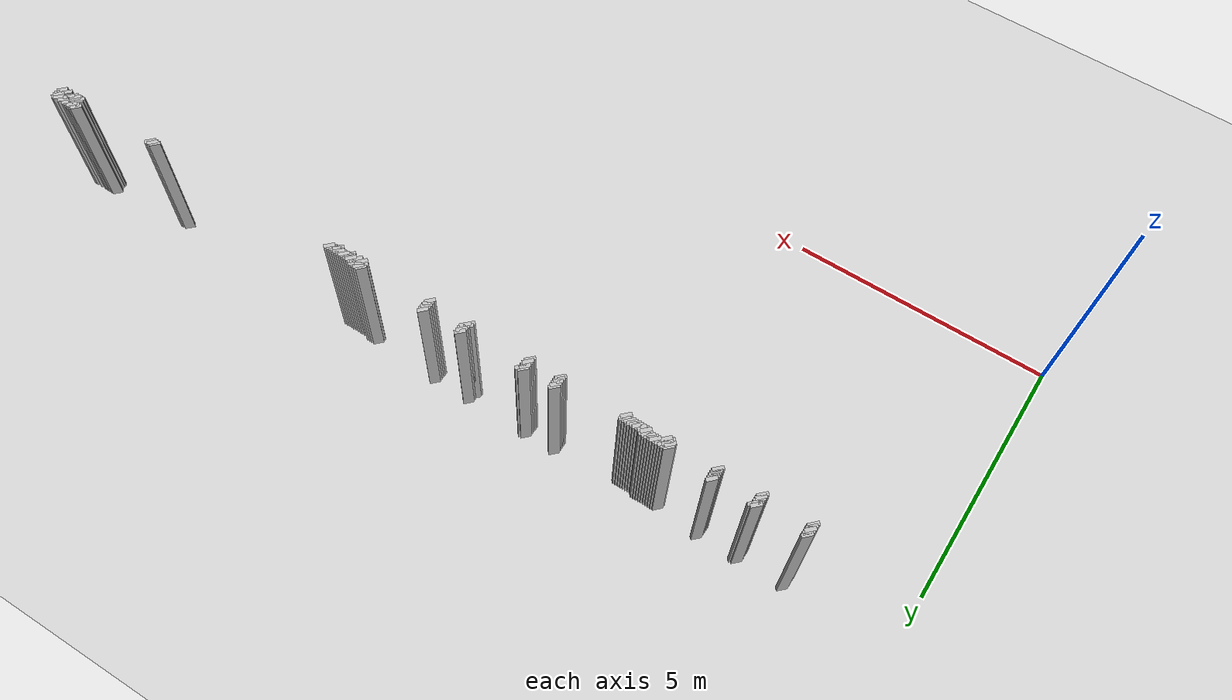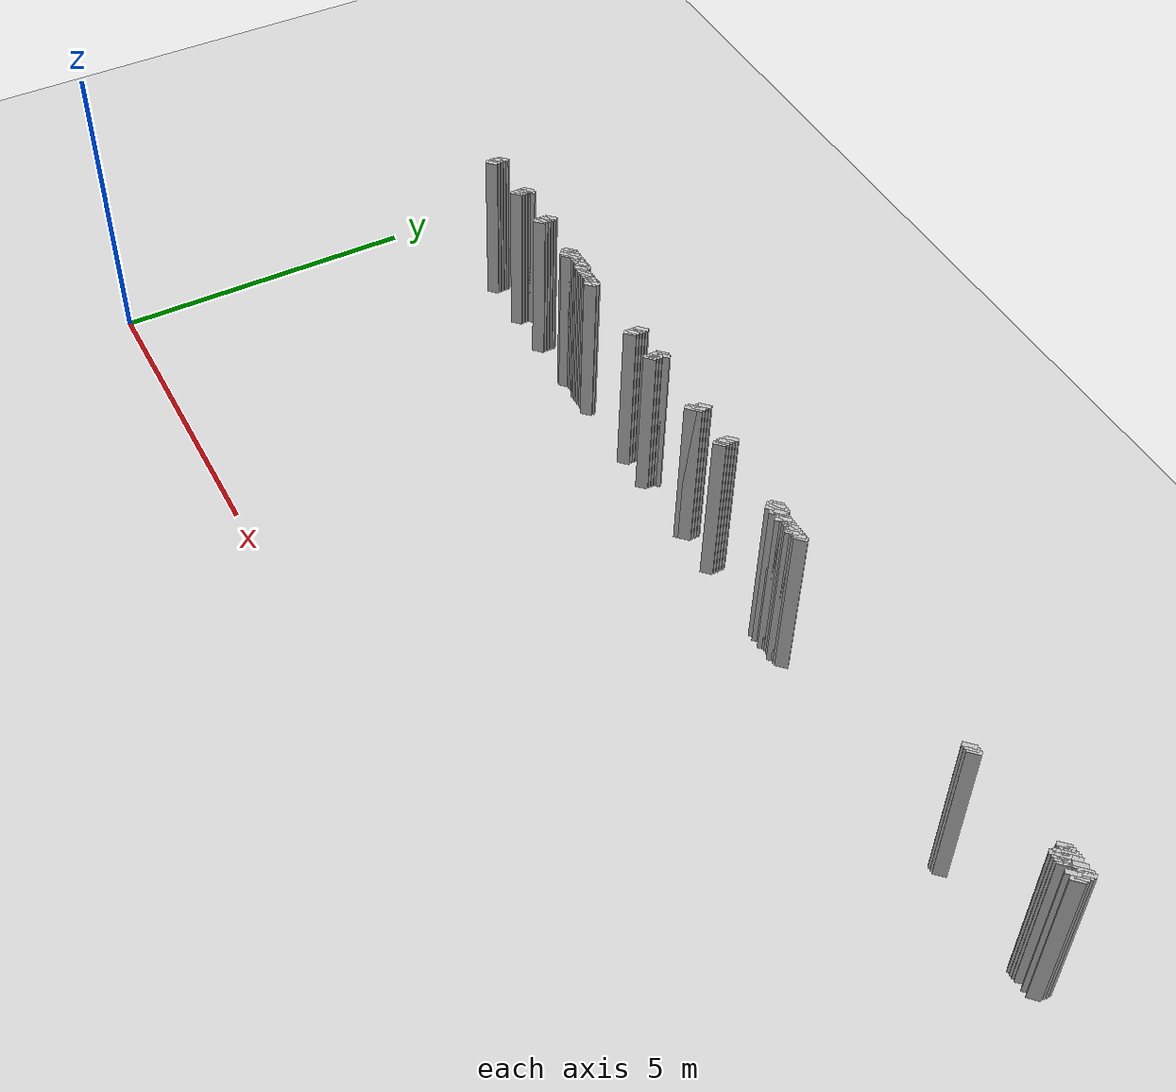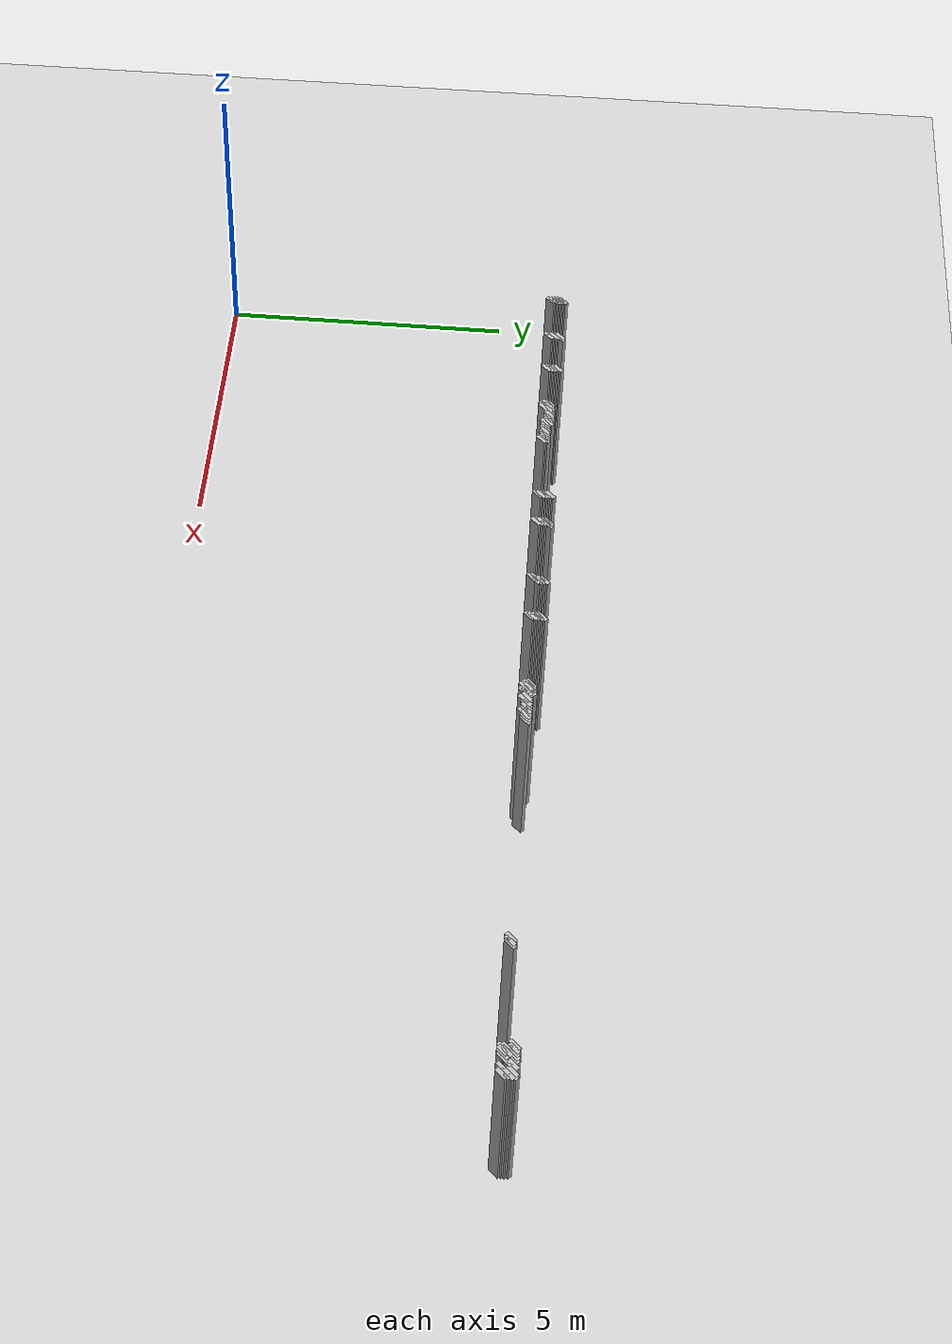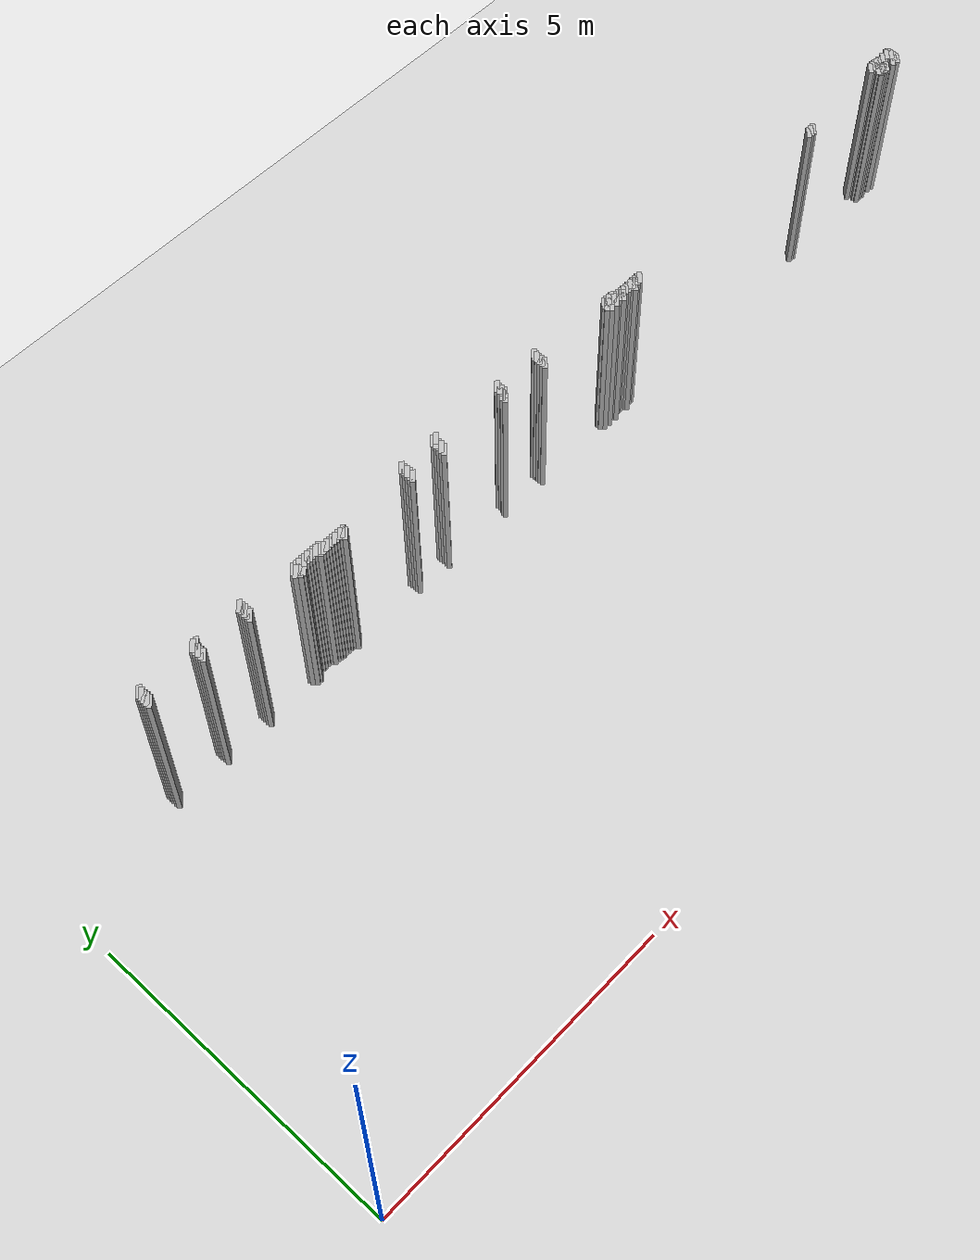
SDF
<sdf version="1.5">
 <world name="default">
  <include><uri>model://ground_plane</uri></include>
  <include><uri>model://sun</uri></include>
  <model name="grey_wall_2545">
   <static>1</static>
   <link name="link">
    <pose>2.1 6.15  1.4 0 0 -0.7853981633974572</pose>
    <collision name="collision">
     <geometry><box><size>0.07071067811865513 .2  2.8</size></box></geometry>
    </collision>
    <visual name="visual">
     <cast_shadows>0</cast_shadows>
     <geometry><box><size>0.07071067811865513 .2  2.8</size></box></geometry>
    </visual>
   </link>
  </model>
  <model name="grey_wall_2546">
   <static>1</static>
   <link name="link">
    <pose>3.0 6.15  1.4 0 0 -0.7853981633974572</pose>
    <collision name="collision">
     <geometry><box><size>0.07071067811865513 .2  2.8</size></box></geometry>
    </collision>
    <visual name="visual">
     <cast_shadows>0</cast_shadows>
     <geometry><box><size>0.07071067811865513 .2  2.8</size></box></geometry>
    </visual>
   </link>
  </model>
  <model name="grey_wall_2547">
   <static>1</static>
   <link name="link">
    <pose>3.0500000000000003 6.15  1.4 0 0 -0.7853981633974572</pose>
    <collision name="collision">
     <geometry><box><size>0.07071067811865513 .2  2.8</size></box></geometry>
    </collision>
    <visual name="visual">
     <cast_shadows>0</cast_shadows>
     <geometry><box><size>0.07071067811865513 .2  2.8</size></box></geometry>
    </visual>
   </link>
  </model>
  <model name="grey_wall_2548">
   <static>1</static>
   <link name="link">
    <pose>3.8000000000000003 6.15  1.4 0 0 -0.7853981633974572</pose>
    <collision name="collision">
     <geometry><box><size>0.07071067811865513 .2  2.8</size></box></geometry>
    </collision>
    <visual name="visual">
     <cast_shadows>0</cast_shadows>
     <geometry><box><size>0.07071067811865513 .2  2.8</size></box></geometry>
    </visual>
   </link>
  </model>
  <model name="grey_wall_2549">
   <static>1</static>
   <link name="link">
    <pose>6.75 6.15  1.4 0 0 -0.7853981633974483</pose>
    <collision name="collision">
     <geometry><box><size>0.07071067811865576 .2  2.8</size></box></geometry>
    </collision>
    <visual name="visual">
     <cast_shadows>0</cast_shadows>
     <geometry><box><size>0.07071067811865576 .2  2.8</size></box></geometry>
    </visual>
   </link>
  </model>
  <model name="grey_wall_2550">
   <static>1</static>
   <link name="link">
    <pose>7.3500000000000005 6.15  1.4 0 0 -0.7853981633974483</pose>
    <collision name="collision">
     <geometry><box><size>0.07071067811865576 .2  2.8</size></box></geometry>
    </collision>
    <visual name="visual">
     <cast_shadows>0</cast_shadows>
     <geometry><box><size>0.07071067811865576 .2  2.8</size></box></geometry>
    </visual>
   </link>
  </model>
  <model name="grey_wall_2551">
   <static>1</static>
   <link name="link">
    <pose>7.4 6.15  1.4 0 0 -0.7853981633974483</pose>
    <collision name="collision">
     <geometry><box><size>0.07071067811865576 .2  2.8</size></box></geometry>
    </collision>
    <visual name="visual">
     <cast_shadows>0</cast_shadows>
     <geometry><box><size>0.07071067811865576 .2  2.8</size></box></geometry>
    </visual>
   </link>
  </model>
  <model name="grey_wall_2552">
   <static>1</static>
   <link name="link">
    <pose>8.6 6.15  1.4 0 0 -0.7853981633974483</pose>
    <collision name="collision">
     <geometry><box><size>0.07071067811865576 .2  2.8</size></box></geometry>
    </collision>
    <visual name="visual">
     <cast_shadows>0</cast_shadows>
     <geometry><box><size>0.07071067811865576 .2  2.8</size></box></geometry>
    </visual>
   </link>
  </model>
  <model name="grey_wall_2553">
   <static>1</static>
   <link name="link">
    <pose>9.35 6.15  1.4 0 0 -0.7853981633974483</pose>
    <collision name="collision">
     <geometry><box><size>0.07071067811865576 .2  2.8</size></box></geometry>
    </collision>
    <visual name="visual">
     <cast_shadows>0</cast_shadows>
     <geometry><box><size>0.07071067811865576 .2  2.8</size></box></geometry>
    </visual>
   </link>
  </model>
  <model name="grey_wall_2554">
   <static>1</static>
   <link name="link">
    <pose>16.95 6.15  1.4 0 0 -0.7853981633974838</pose>
    <collision name="collision">
     <geometry><box><size>0.07071067811865325 .2  2.8</size></box></geometry>
    </collision>
    <visual name="visual">
     <cast_shadows>0</cast_shadows>
     <geometry><box><size>0.07071067811865325 .2  2.8</size></box></geometry>
    </visual>
   </link>
  </model>
  <model name="grey_wall_2555">
   <static>1</static>
   <link name="link">
    <pose>17.0 6.15  1.4 0 0 -0.7853981633974838</pose>
    <collision name="collision">
     <geometry><box><size>0.07071067811865325 .2  2.8</size></box></geometry>
    </collision>
    <visual name="visual">
     <cast_shadows>0</cast_shadows>
     <geometry><box><size>0.07071067811865325 .2  2.8</size></box></geometry>
    </visual>
   </link>
  </model>
  <model name="grey_wall_2556">
   <static>1</static>
   <link name="link">
    <pose>17.05 6.15  1.4 0 0 -0.7853981633974838</pose>
    <collision name="collision">
     <geometry><box><size>0.07071067811865325 .2  2.8</size></box></geometry>
    </collision>
    <visual name="visual">
     <cast_shadows>0</cast_shadows>
     <geometry><box><size>0.07071067811865325 .2  2.8</size></box></geometry>
    </visual>
   </link>
  </model>
  <model name="grey_wall_2557">
   <static>1</static>
   <link name="link">
    <pose>17.1 6.15  1.4 0 0 -0.7853981633974838</pose>
    <collision name="collision">
     <geometry><box><size>0.07071067811865325 .2  2.8</size></box></geometry>
    </collision>
    <visual name="visual">
     <cast_shadows>0</cast_shadows>
     <geometry><box><size>0.07071067811865325 .2  2.8</size></box></geometry>
    </visual>
   </link>
  </model>
  <model name="grey_wall_2558">
   <static>1</static>
   <link name="link">
    <pose>17.150000000000002 6.15  1.4 0 0 -0.7853981633974838</pose>
    <collision name="collision">
     <geometry><box><size>0.07071067811865325 .2  2.8</size></box></geometry>
    </collision>
    <visual name="visual">
     <cast_shadows>0</cast_shadows>
     <geometry><box><size>0.07071067811865325 .2  2.8</size></box></geometry>
    </visual>
   </link>
  </model>
  <model name="grey_wall_2559">
   <static>1</static>
   <link name="link">
    <pose>17.25 6.15  1.4 0 0 -0.7853981633974838</pose>
    <collision name="collision">
     <geometry><box><size>0.07071067811865325 .2  2.8</size></box></geometry>
    </collision>
    <visual name="visual">
     <cast_shadows>0</cast_shadows>
     <geometry><box><size>0.07071067811865325 .2  2.8</size></box></geometry>
    </visual>
   </link>
  </model>
  <model name="grey_wall_2560">
   <static>1</static>
   <link name="link">
    <pose>17.35 6.15  1.4 0 0 -0.7853981633974838</pose>
    <collision name="collision">
     <geometry><box><size>0.07071067811865325 .2  2.8</size></box></geometry>
    </collision>
    <visual name="visual">
     <cast_shadows>0</cast_shadows>
     <geometry><box><size>0.07071067811865325 .2  2.8</size></box></geometry>
    </visual>
   </link>
  </model>
  <model name="grey_wall_2561">
   <static>1</static>
   <link name="link">
    <pose>17.400000000000002 6.15  1.4 0 0 -0.7853981633974838</pose>
    <collision name="collision">
     <geometry><box><size>0.07071067811865325 .2  2.8</size></box></geometry>
    </collision>
    <visual name="visual">
     <cast_shadows>0</cast_shadows>
     <geometry><box><size>0.07071067811865325 .2  2.8</size></box></geometry>
    </visual>
   </link>
  </model>
  <model name="grey_wall_2562">
   <static>1</static>
   <link name="link">
    <pose>2.1 6.1000000000000005  1.4 0 0 -0.7853981633974572</pose>
    <collision name="collision">
     <geometry><box><size>0.07071067811865513 .2  2.8</size></box></geometry>
    </collision>
    <visual name="visual">
     <cast_shadows>0</cast_shadows>
     <geometry><box><size>0.07071067811865513 .2  2.8</size></box></geometry>
    </visual>
   </link>
  </model>
  <model name="grey_wall_2563">
   <static>1</static>
   <link name="link">
    <pose>3.0 6.1000000000000005  1.4 0 0 -0.7853981633974572</pose>
    <collision name="collision">
     <geometry><box><size>0.07071067811865513 .2  2.8</size></box></geometry>
    </collision>
    <visual name="visual">
     <cast_shadows>0</cast_shadows>
     <geometry><box><size>0.07071067811865513 .2  2.8</size></box></geometry>
    </visual>
   </link>
  </model>
  <model name="grey_wall_2564">
   <static>1</static>
   <link name="link">
    <pose>3.8000000000000003 6.1000000000000005  1.4 0 0 -0.7853981633974572</pose>
    <collision name="collision">
     <geometry><box><size>0.07071067811865513 .2  2.8</size></box></geometry>
    </collision>
    <visual name="visual">
     <cast_shadows>0</cast_shadows>
     <geometry><box><size>0.07071067811865513 .2  2.8</size></box></geometry>
    </visual>
   </link>
  </model>
  <model name="grey_wall_2565">
   <static>1</static>
   <link name="link">
    <pose>6.75 6.1000000000000005  1.4 0 0 -0.7853981633974483</pose>
    <collision name="collision">
     <geometry><box><size>0.07071067811865576 .2  2.8</size></box></geometry>
    </collision>
    <visual name="visual">
     <cast_shadows>0</cast_shadows>
     <geometry><box><size>0.07071067811865576 .2  2.8</size></box></geometry>
    </visual>
   </link>
  </model>
  <model name="grey_wall_2566">
   <static>1</static>
   <link name="link">
    <pose>7.3500000000000005 6.1000000000000005  1.4 0 0 -0.7853981633974483</pose>
    <collision name="collision">
     <geometry><box><size>0.07071067811865576 .2  2.8</size></box></geometry>
    </collision>
    <visual name="visual">
     <cast_shadows>0</cast_shadows>
     <geometry><box><size>0.07071067811865576 .2  2.8</size></box></geometry>
    </visual>
   </link>
  </model>
  <model name="grey_wall_2567">
   <static>1</static>
   <link name="link">
    <pose>8.6 6.1000000000000005  1.4 0 0 -0.7853981633974483</pose>
    <collision name="collision">
     <geometry><box><size>0.07071067811865576 .2  2.8</size></box></geometry>
    </collision>
    <visual name="visual">
     <cast_shadows>0</cast_shadows>
     <geometry><box><size>0.07071067811865576 .2  2.8</size></box></geometry>
    </visual>
   </link>
  </model>
  <model name="grey_wall_2568">
   <static>1</static>
   <link name="link">
    <pose>9.35 6.1000000000000005  1.4 0 0 -0.7853981633974483</pose>
    <collision name="collision">
     <geometry><box><size>0.07071067811865576 .2  2.8</size></box></geometry>
    </collision>
    <visual name="visual">
     <cast_shadows>0</cast_shadows>
     <geometry><box><size>0.07071067811865576 .2  2.8</size></box></geometry>
    </visual>
   </link>
  </model>
  <model name="grey_wall_2569">
   <static>1</static>
   <link name="link">
    <pose>17.400000000000002 6.1000000000000005  1.4 0 0 -0.7853981633974838</pose>
    <collision name="collision">
     <geometry><box><size>0.07071067811865325 .2  2.8</size></box></geometry>
    </collision>
    <visual name="visual">
     <cast_shadows>0</cast_shadows>
     <geometry><box><size>0.07071067811865325 .2  2.8</size></box></geometry>
    </visual>
   </link>
  </model>
  <model name="grey_wall_2570">
   <static>1</static>
   <link name="link">
    <pose>2.1 6.050000000000001  1.4 0 0 -0.7853981633974572</pose>
    <collision name="collision">
     <geometry><box><size>0.07071067811865513 .2  2.8</size></box></geometry>
    </collision>
    <visual name="visual">
     <cast_shadows>0</cast_shadows>
     <geometry><box><size>0.07071067811865513 .2  2.8</size></box></geometry>
    </visual>
   </link>
  </model>
  <model name="grey_wall_2571">
   <static>1</static>
   <link name="link">
    <pose>3.0 6.050000000000001  1.4 0 0 -0.7853981633974572</pose>
    <collision name="collision">
     <geometry><box><size>0.07071067811865513 .2  2.8</size></box></geometry>
    </collision>
    <visual name="visual">
     <cast_shadows>0</cast_shadows>
     <geometry><box><size>0.07071067811865513 .2  2.8</size></box></geometry>
    </visual>
   </link>
  </model>
  <model name="grey_wall_2572">
   <static>1</static>
   <link name="link">
    <pose>3.8000000000000003 6.050000000000001  1.4 0 0 -0.7853981633974572</pose>
    <collision name="collision">
     <geometry><box><size>0.07071067811865513 .2  2.8</size></box></geometry>
    </collision>
    <visual name="visual">
     <cast_shadows>0</cast_shadows>
     <geometry><box><size>0.07071067811865513 .2  2.8</size></box></geometry>
    </visual>
   </link>
  </model>
  <model name="grey_wall_2573">
   <static>1</static>
   <link name="link">
    <pose>4.65 6.050000000000001  1.4 0 0 -0.7853981633974483</pose>
    <collision name="collision">
     <geometry><box><size>0.07071067811865576 .2  2.8</size></box></geometry>
    </collision>
    <visual name="visual">
     <cast_shadows>0</cast_shadows>
     <geometry><box><size>0.07071067811865576 .2  2.8</size></box></geometry>
    </visual>
   </link>
  </model>
  <model name="grey_wall_2574">
   <static>1</static>
   <link name="link">
    <pose>4.7 6.050000000000001  1.4 0 0 -0.7853981633974483</pose>
    <collision name="collision">
     <geometry><box><size>0.07071067811865576 .2  2.8</size></box></geometry>
    </collision>
    <visual name="visual">
     <cast_shadows>0</cast_shadows>
     <geometry><box><size>0.07071067811865576 .2  2.8</size></box></geometry>
    </visual>
   </link>
  </model>
  <model name="grey_wall_2575">
   <static>1</static>
   <link name="link">
    <pose>4.75 6.050000000000001  1.4 0 0 -0.7853981633974483</pose>
    <collision name="collision">
     <geometry><box><size>0.07071067811865576 .2  2.8</size></box></geometry>
    </collision>
    <visual name="visual">
     <cast_shadows>0</cast_shadows>
     <geometry><box><size>0.07071067811865576 .2  2.8</size></box></geometry>
    </visual>
   </link>
  </model>
  <model name="grey_wall_2576">
   <static>1</static>
   <link name="link">
    <pose>4.800000000000001 6.050000000000001  1.4 0 0 -0.7853981633974483</pose>
    <collision name="collision">
     <geometry><box><size>0.07071067811865576 .2  2.8</size></box></geometry>
    </collision>
    <visual name="visual">
     <cast_shadows>0</cast_shadows>
     <geometry><box><size>0.07071067811865576 .2  2.8</size></box></geometry>
    </visual>
   </link>
  </model>
  <model name="grey_wall_2577">
   <static>1</static>
   <link name="link">
    <pose>4.8500000000000005 6.050000000000001  1.4 0 0 -0.7853981633974483</pose>
    <collision name="collision">
     <geometry><box><size>0.07071067811865576 .2  2.8</size></box></geometry>
    </collision>
    <visual name="visual">
     <cast_shadows>0</cast_shadows>
     <geometry><box><size>0.07071067811865576 .2  2.8</size></box></geometry>
    </visual>
   </link>
  </model>
  <model name="grey_wall_2578">
   <static>1</static>
   <link name="link">
    <pose>4.9 6.050000000000001  1.4 0 0 -0.7853981633974483</pose>
    <collision name="collision">
     <geometry><box><size>0.07071067811865576 .2  2.8</size></box></geometry>
    </collision>
    <visual name="visual">
     <cast_shadows>0</cast_shadows>
     <geometry><box><size>0.07071067811865576 .2  2.8</size></box></geometry>
    </visual>
   </link>
  </model>
  <model name="grey_wall_2579">
   <static>1</static>
   <link name="link">
    <pose>4.95 6.050000000000001  1.4 0 0 -0.7853981633974483</pose>
    <collision name="collision">
     <geometry><box><size>0.07071067811865576 .2  2.8</size></box></geometry>
    </collision>
    <visual name="visual">
     <cast_shadows>0</cast_shadows>
     <geometry><box><size>0.07071067811865576 .2  2.8</size></box></geometry>
    </visual>
   </link>
  </model>
  <model name="grey_wall_2580">
   <static>1</static>
   <link name="link">
    <pose>5.0 6.050000000000001  1.4 0 0 -0.7853981633974483</pose>
    <collision name="collision">
     <geometry><box><size>0.07071067811865576 .2  2.8</size></box></geometry>
    </collision>
    <visual name="visual">
     <cast_shadows>0</cast_shadows>
     <geometry><box><size>0.07071067811865576 .2  2.8</size></box></geometry>
    </visual>
   </link>
  </model>
  <model name="grey_wall_2581">
   <static>1</static>
   <link name="link">
    <pose>5.050000000000001 6.050000000000001  1.4 0 0 -0.7853981633974483</pose>
    <collision name="collision">
     <geometry><box><size>0.07071067811865576 .2  2.8</size></box></geometry>
    </collision>
    <visual name="visual">
     <cast_shadows>0</cast_shadows>
     <geometry><box><size>0.07071067811865576 .2  2.8</size></box></geometry>
    </visual>
   </link>
  </model>
  <model name="grey_wall_2582">
   <static>1</static>
   <link name="link">
    <pose>5.1000000000000005 6.050000000000001  1.4 0 0 -0.7853981633974483</pose>
    <collision name="collision">
     <geometry><box><size>0.07071067811865576 .2  2.8</size></box></geometry>
    </collision>
    <visual name="visual">
     <cast_shadows>0</cast_shadows>
     <geometry><box><size>0.07071067811865576 .2  2.8</size></box></geometry>
    </visual>
   </link>
  </model>
  <model name="grey_wall_2583">
   <static>1</static>
   <link name="link">
    <pose>6.75 6.050000000000001  1.4 0 0 -0.7853981633974483</pose>
    <collision name="collision">
     <geometry><box><size>0.07071067811865576 .2  2.8</size></box></geometry>
    </collision>
    <visual name="visual">
     <cast_shadows>0</cast_shadows>
     <geometry><box><size>0.07071067811865576 .2  2.8</size></box></geometry>
    </visual>
   </link>
  </model>
  <model name="grey_wall_2584">
   <static>1</static>
   <link name="link">
    <pose>7.3500000000000005 6.050000000000001  1.4 0 0 -0.7853981633974483</pose>
    <collision name="collision">
     <geometry><box><size>0.07071067811865576 .2  2.8</size></box></geometry>
    </collision>
    <visual name="visual">
     <cast_shadows>0</cast_shadows>
     <geometry><box><size>0.07071067811865576 .2  2.8</size></box></geometry>
    </visual>
   </link>
  </model>
  <model name="grey_wall_2585">
   <static>1</static>
   <link name="link">
    <pose>8.6 6.050000000000001  1.4 0 0 -0.7853981633974483</pose>
    <collision name="collision">
     <geometry><box><size>0.07071067811865576 .2  2.8</size></box></geometry>
    </collision>
    <visual name="visual">
     <cast_shadows>0</cast_shadows>
     <geometry><box><size>0.07071067811865576 .2  2.8</size></box></geometry>
    </visual>
   </link>
  </model>
  <model name="grey_wall_2586">
   <static>1</static>
   <link name="link">
    <pose>9.35 6.050000000000001  1.4 0 0 -0.7853981633974483</pose>
    <collision name="collision">
     <geometry><box><size>0.07071067811865576 .2  2.8</size></box></geometry>
    </collision>
    <visual name="visual">
     <cast_shadows>0</cast_shadows>
     <geometry><box><size>0.07071067811865576 .2  2.8</size></box></geometry>
    </visual>
   </link>
  </model>
  <model name="grey_wall_2587">
   <static>1</static>
   <link name="link">
    <pose>10.700000000000001 6.050000000000001  1.4 0 0 -0.7853981633974483</pose>
    <collision name="collision">
     <geometry><box><size>0.07071067811865576 .2  2.8</size></box></geometry>
    </collision>
    <visual name="visual">
     <cast_shadows>0</cast_shadows>
     <geometry><box><size>0.07071067811865576 .2  2.8</size></box></geometry>
    </visual>
   </link>
  </model>
  <model name="grey_wall_2588">
   <static>1</static>
   <link name="link">
    <pose>10.75 6.050000000000001  1.4 0 0 -0.7853981633974483</pose>
    <collision name="collision">
     <geometry><box><size>0.07071067811865576 .2  2.8</size></box></geometry>
    </collision>
    <visual name="visual">
     <cast_shadows>0</cast_shadows>
     <geometry><box><size>0.07071067811865576 .2  2.8</size></box></geometry>
    </visual>
   </link>
  </model>
  <model name="grey_wall_2589">
   <static>1</static>
   <link name="link">
    <pose>10.8 6.050000000000001  1.4 0 0 -0.7853981633974483</pose>
    <collision name="collision">
     <geometry><box><size>0.07071067811865576 .2  2.8</size></box></geometry>
    </collision>
    <visual name="visual">
     <cast_shadows>0</cast_shadows>
     <geometry><box><size>0.07071067811865576 .2  2.8</size></box></geometry>
    </visual>
   </link>
  </model>
  <model name="grey_wall_2590">
   <static>1</static>
   <link name="link">
    <pose>10.850000000000001 6.050000000000001  1.4 0 0 -0.7853981633974483</pose>
    <collision name="collision">
     <geometry><box><size>0.07071067811865576 .2  2.8</size></box></geometry>
    </collision>
    <visual name="visual">
     <cast_shadows>0</cast_shadows>
     <geometry><box><size>0.07071067811865576 .2  2.8</size></box></geometry>
    </visual>
   </link>
  </model>
  <model name="grey_wall_2591">
   <static>1</static>
   <link name="link">
    <pose>17.0 6.050000000000001  1.4 0 0 -0.7853981633974838</pose>
    <collision name="collision">
     <geometry><box><size>0.07071067811865325 .2  2.8</size></box></geometry>
    </collision>
    <visual name="visual">
     <cast_shadows>0</cast_shadows>
     <geometry><box><size>0.07071067811865325 .2  2.8</size></box></geometry>
    </visual>
   </link>
  </model>
  <model name="grey_wall_2592">
   <static>1</static>
   <link name="link">
    <pose>17.05 6.050000000000001  1.4 0 0 -0.7853981633974838</pose>
    <collision name="collision">
     <geometry><box><size>0.07071067811865325 .2  2.8</size></box></geometry>
    </collision>
    <visual name="visual">
     <cast_shadows>0</cast_shadows>
     <geometry><box><size>0.07071067811865325 .2  2.8</size></box></geometry>
    </visual>
   </link>
  </model>
  <model name="grey_wall_2593">
   <static>1</static>
   <link name="link">
    <pose>17.2 6.050000000000001  1.4 0 0 -0.7853981633974838</pose>
    <collision name="collision">
     <geometry><box><size>0.07071067811865325 .2  2.8</size></box></geometry>
    </collision>
    <visual name="visual">
     <cast_shadows>0</cast_shadows>
     <geometry><box><size>0.07071067811865325 .2  2.8</size></box></geometry>
    </visual>
   </link>
  </model>
  <model name="grey_wall_2594">
   <static>1</static>
   <link name="link">
    <pose>17.400000000000002 6.050000000000001  1.4 0 0 -0.7853981633974838</pose>
    <collision name="collision">
     <geometry><box><size>0.07071067811865325 .2  2.8</size></box></geometry>
    </collision>
    <visual name="visual">
     <cast_shadows>0</cast_shadows>
     <geometry><box><size>0.07071067811865325 .2  2.8</size></box></geometry>
    </visual>
   </link>
  </model>
  <model name="grey_wall_2595">
   <static>1</static>
   <link name="link">
    <pose>2.1 6.0  1.4 0 0 -0.7853981633974572</pose>
    <collision name="collision">
     <geometry><box><size>0.07071067811865513 .2  2.8</size></box></geometry>
    </collision>
    <visual name="visual">
     <cast_shadows>0</cast_shadows>
     <geometry><box><size>0.07071067811865513 .2  2.8</size></box></geometry>
    </visual>
   </link>
  </model>
  <model name="grey_wall_2596">
   <static>1</static>
   <link name="link">
    <pose>3.0 6.0  1.4 0 0 -0.7853981633974572</pose>
    <collision name="collision">
     <geometry><box><size>0.07071067811865513 .2  2.8</size></box></geometry>
    </collision>
    <visual name="visual">
     <cast_shadows>0</cast_shadows>
     <geometry><box><size>0.07071067811865513 .2  2.8</size></box></geometry>
    </visual>
   </link>
  </model>
  <model name="grey_wall_2597">
   <static>1</static>
   <link name="link">
    <pose>3.8000000000000003 6.0  1.4 0 0 -0.7853981633974572</pose>
    <collision name="collision">
     <geometry><box><size>0.07071067811865513 .2  2.8</size></box></geometry>
    </collision>
    <visual name="visual">
     <cast_shadows>0</cast_shadows>
     <geometry><box><size>0.07071067811865513 .2  2.8</size></box></geometry>
    </visual>
   </link>
  </model>
  <model name="grey_wall_2598">
   <static>1</static>
   <link name="link">
    <pose>4.65 6.0  1.4 0 0 -0.7853981633974483</pose>
    <collision name="collision">
     <geometry><box><size>0.07071067811865576 .2  2.8</size></box></geometry>
    </collision>
    <visual name="visual">
     <cast_shadows>0</cast_shadows>
     <geometry><box><size>0.07071067811865576 .2  2.8</size></box></geometry>
    </visual>
   </link>
  </model>
  <model name="grey_wall_2599">
   <static>1</static>
   <link name="link">
    <pose>4.7 6.0  1.4 0 0 -0.7853981633974483</pose>
    <collision name="collision">
     <geometry><box><size>0.07071067811865576 .2  2.8</size></box></geometry>
    </collision>
    <visual name="visual">
     <cast_shadows>0</cast_shadows>
     <geometry><box><size>0.07071067811865576 .2  2.8</size></box></geometry>
    </visual>
   </link>
  </model>
  <model name="grey_wall_2600">
   <static>1</static>
   <link name="link">
    <pose>5.1000000000000005 6.0  1.4 0 0 -0.7853981633974483</pose>
    <collision name="collision">
     <geometry><box><size>0.07071067811865576 .2  2.8</size></box></geometry>
    </collision>
    <visual name="visual">
     <cast_shadows>0</cast_shadows>
     <geometry><box><size>0.07071067811865576 .2  2.8</size></box></geometry>
    </visual>
   </link>
  </model>
  <model name="grey_wall_2601">
   <static>1</static>
   <link name="link">
    <pose>5.15 6.0  1.4 0 0 -0.7853981633974483</pose>
    <collision name="collision">
     <geometry><box><size>0.07071067811865576 .2  2.8</size></box></geometry>
    </collision>
    <visual name="visual">
     <cast_shadows>0</cast_shadows>
     <geometry><box><size>0.07071067811865576 .2  2.8</size></box></geometry>
    </visual>
   </link>
  </model>
  <model name="grey_wall_2602">
   <static>1</static>
   <link name="link">
    <pose>5.2 6.0  1.4 0 0 -0.7853981633974483</pose>
    <collision name="collision">
     <geometry><box><size>0.07071067811865576 .2  2.8</size></box></geometry>
    </collision>
    <visual name="visual">
     <cast_shadows>0</cast_shadows>
     <geometry><box><size>0.07071067811865576 .2  2.8</size></box></geometry>
    </visual>
   </link>
  </model>
  <model name="grey_wall_2603">
   <static>1</static>
   <link name="link">
    <pose>5.25 6.0  1.4 0 0 -0.7853981633974483</pose>
    <collision name="collision">
     <geometry><box><size>0.07071067811865576 .2  2.8</size></box></geometry>
    </collision>
    <visual name="visual">
     <cast_shadows>0</cast_shadows>
     <geometry><box><size>0.07071067811865576 .2  2.8</size></box></geometry>
    </visual>
   </link>
  </model>
  <model name="grey_wall_2604">
   <static>1</static>
   <link name="link">
    <pose>5.300000000000001 6.0  1.4 0 0 -0.7853981633974483</pose>
    <collision name="collision">
     <geometry><box><size>0.07071067811865576 .2  2.8</size></box></geometry>
    </collision>
    <visual name="visual">
     <cast_shadows>0</cast_shadows>
     <geometry><box><size>0.07071067811865576 .2  2.8</size></box></geometry>
    </visual>
   </link>
  </model>
  <model name="grey_wall_2605">
   <static>1</static>
   <link name="link">
    <pose>5.3500000000000005 6.0  1.4 0 0 -0.7853981633974483</pose>
    <collision name="collision">
     <geometry><box><size>0.07071067811865576 .2  2.8</size></box></geometry>
    </collision>
    <visual name="visual">
     <cast_shadows>0</cast_shadows>
     <geometry><box><size>0.07071067811865576 .2  2.8</size></box></geometry>
    </visual>
   </link>
  </model>
  <model name="grey_wall_2606">
   <static>1</static>
   <link name="link">
    <pose>5.4 6.0  1.4 0 0 -0.7853981633974483</pose>
    <collision name="collision">
     <geometry><box><size>0.07071067811865576 .2  2.8</size></box></geometry>
    </collision>
    <visual name="visual">
     <cast_shadows>0</cast_shadows>
     <geometry><box><size>0.07071067811865576 .2  2.8</size></box></geometry>
    </visual>
   </link>
  </model>
  <model name="grey_wall_2607">
   <static>1</static>
   <link name="link">
    <pose>5.45 6.0  1.4 0 0 -0.7853981633974483</pose>
    <collision name="collision">
     <geometry><box><size>0.07071067811865576 .2  2.8</size></box></geometry>
    </collision>
    <visual name="visual">
     <cast_shadows>0</cast_shadows>
     <geometry><box><size>0.07071067811865576 .2  2.8</size></box></geometry>
    </visual>
   </link>
  </model>
  <model name="grey_wall_2608">
   <static>1</static>
   <link name="link">
    <pose>5.5 6.0  1.4 0 0 -0.7853981633974483</pose>
    <collision name="collision">
     <geometry><box><size>0.07071067811865576 .2  2.8</size></box></geometry>
    </collision>
    <visual name="visual">
     <cast_shadows>0</cast_shadows>
     <geometry><box><size>0.07071067811865576 .2  2.8</size></box></geometry>
    </visual>
   </link>
  </model>
  <model name="grey_wall_2609">
   <static>1</static>
   <link name="link">
    <pose>6.75 6.0  1.4 0 0 -0.7853981633974483</pose>
    <collision name="collision">
     <geometry><box><size>0.07071067811865576 .2  2.8</size></box></geometry>
    </collision>
    <visual name="visual">
     <cast_shadows>0</cast_shadows>
     <geometry><box><size>0.07071067811865576 .2  2.8</size></box></geometry>
    </visual>
   </link>
  </model>
  <model name="grey_wall_2610">
   <static>1</static>
   <link name="link">
    <pose>7.3500000000000005 6.0  1.4 0 0 -0.7853981633974483</pose>
    <collision name="collision">
     <geometry><box><size>0.07071067811865576 .2  2.8</size></box></geometry>
    </collision>
    <visual name="visual">
     <cast_shadows>0</cast_shadows>
     <geometry><box><size>0.07071067811865576 .2  2.8</size></box></geometry>
    </visual>
   </link>
  </model>
  <model name="grey_wall_2611">
   <static>1</static>
   <link name="link">
    <pose>8.55 6.0  1.4 0 0 -0.7853981633974483</pose>
    <collision name="collision">
     <geometry><box><size>0.07071067811865576 .2  2.8</size></box></geometry>
    </collision>
    <visual name="visual">
     <cast_shadows>0</cast_shadows>
     <geometry><box><size>0.07071067811865576 .2  2.8</size></box></geometry>
    </visual>
   </link>
  </model>
  <model name="grey_wall_2612">
   <static>1</static>
   <link name="link">
    <pose>8.6 6.0  1.4 0 0 -0.7853981633974483</pose>
    <collision name="collision">
     <geometry><box><size>0.07071067811865576 .2  2.8</size></box></geometry>
    </collision>
    <visual name="visual">
     <cast_shadows>0</cast_shadows>
     <geometry><box><size>0.07071067811865576 .2  2.8</size></box></geometry>
    </visual>
   </link>
  </model>
  <model name="grey_wall_2613">
   <static>1</static>
   <link name="link">
    <pose>9.35 6.0  1.4 0 0 -0.7853981633974483</pose>
    <collision name="collision">
     <geometry><box><size>0.07071067811865576 .2  2.8</size></box></geometry>
    </collision>
    <visual name="visual">
     <cast_shadows>0</cast_shadows>
     <geometry><box><size>0.07071067811865576 .2  2.8</size></box></geometry>
    </visual>
   </link>
  </model>
  <model name="grey_wall_2614">
   <static>1</static>
   <link name="link">
    <pose>10.700000000000001 6.0  1.4 0 0 -0.7853981633974483</pose>
    <collision name="collision">
     <geometry><box><size>0.07071067811865576 .2  2.8</size></box></geometry>
    </collision>
    <visual name="visual">
     <cast_shadows>0</cast_shadows>
     <geometry><box><size>0.07071067811865576 .2  2.8</size></box></geometry>
    </visual>
   </link>
  </model>
  <model name="grey_wall_2615">
   <static>1</static>
   <link name="link">
    <pose>10.75 6.0  1.4 0 0 -0.7853981633974483</pose>
    <collision name="collision">
     <geometry><box><size>0.07071067811865576 .2  2.8</size></box></geometry>
    </collision>
    <visual name="visual">
     <cast_shadows>0</cast_shadows>
     <geometry><box><size>0.07071067811865576 .2  2.8</size></box></geometry>
    </visual>
   </link>
  </model>
  <model name="grey_wall_2616">
   <static>1</static>
   <link name="link">
    <pose>10.850000000000001 6.0  1.4 0 0 -0.7853981633974483</pose>
    <collision name="collision">
     <geometry><box><size>0.07071067811865576 .2  2.8</size></box></geometry>
    </collision>
    <visual name="visual">
     <cast_shadows>0</cast_shadows>
     <geometry><box><size>0.07071067811865576 .2  2.8</size></box></geometry>
    </visual>
   </link>
  </model>
  <model name="grey_wall_2617">
   <static>1</static>
   <link name="link">
    <pose>10.9 6.0  1.4 0 0 -0.7853981633974483</pose>
    <collision name="collision">
     <geometry><box><size>0.07071067811865576 .2  2.8</size></box></geometry>
    </collision>
    <visual name="visual">
     <cast_shadows>0</cast_shadows>
     <geometry><box><size>0.07071067811865576 .2  2.8</size></box></geometry>
    </visual>
   </link>
  </model>
  <model name="grey_wall_2618">
   <static>1</static>
   <link name="link">
    <pose>10.950000000000001 6.0  1.4 0 0 -0.7853981633974483</pose>
    <collision name="collision">
     <geometry><box><size>0.07071067811865576 .2  2.8</size></box></geometry>
    </collision>
    <visual name="visual">
     <cast_shadows>0</cast_shadows>
     <geometry><box><size>0.07071067811865576 .2  2.8</size></box></geometry>
    </visual>
   </link>
  </model>
  <model name="grey_wall_2619">
   <static>1</static>
   <link name="link">
    <pose>11.0 6.0  1.4 0 0 -0.7853981633974483</pose>
    <collision name="collision">
     <geometry><box><size>0.07071067811865576 .2  2.8</size></box></geometry>
    </collision>
    <visual name="visual">
     <cast_shadows>0</cast_shadows>
     <geometry><box><size>0.07071067811865576 .2  2.8</size></box></geometry>
    </visual>
   </link>
  </model>
  <model name="grey_wall_2620">
   <static>1</static>
   <link name="link">
    <pose>11.05 6.0  1.4 0 0 -0.7853981633974483</pose>
    <collision name="collision">
     <geometry><box><size>0.07071067811865576 .2  2.8</size></box></geometry>
    </collision>
    <visual name="visual">
     <cast_shadows>0</cast_shadows>
     <geometry><box><size>0.07071067811865576 .2  2.8</size></box></geometry>
    </visual>
   </link>
  </model>
  <model name="grey_wall_2621">
   <static>1</static>
   <link name="link">
    <pose>11.100000000000001 6.0  1.4 0 0 -0.7853981633974483</pose>
    <collision name="collision">
     <geometry><box><size>0.07071067811865576 .2  2.8</size></box></geometry>
    </collision>
    <visual name="visual">
     <cast_shadows>0</cast_shadows>
     <geometry><box><size>0.07071067811865576 .2  2.8</size></box></geometry>
    </visual>
   </link>
  </model>
  <model name="grey_wall_2622">
   <static>1</static>
   <link name="link">
    <pose>11.15 6.0  1.4 0 0 -0.7853981633974483</pose>
    <collision name="collision">
     <geometry><box><size>0.07071067811865576 .2  2.8</size></box></geometry>
    </collision>
    <visual name="visual">
     <cast_shadows>0</cast_shadows>
     <geometry><box><size>0.07071067811865576 .2  2.8</size></box></geometry>
    </visual>
   </link>
  </model>
  <model name="grey_wall_2623">
   <static>1</static>
   <link name="link">
    <pose>11.200000000000001 6.0  1.4 0 0 -0.7853981633974483</pose>
    <collision name="collision">
     <geometry><box><size>0.07071067811865576 .2  2.8</size></box></geometry>
    </collision>
    <visual name="visual">
     <cast_shadows>0</cast_shadows>
     <geometry><box><size>0.07071067811865576 .2  2.8</size></box></geometry>
    </visual>
   </link>
  </model>
  <model name="grey_wall_2624">
   <static>1</static>
   <link name="link">
    <pose>11.25 6.0  1.4 0 0 -0.7853981633974483</pose>
    <collision name="collision">
     <geometry><box><size>0.07071067811865576 .2  2.8</size></box></geometry>
    </collision>
    <visual name="visual">
     <cast_shadows>0</cast_shadows>
     <geometry><box><size>0.07071067811865576 .2  2.8</size></box></geometry>
    </visual>
   </link>
  </model>
  <model name="grey_wall_2625">
   <static>1</static>
   <link name="link">
    <pose>11.3 6.0  1.4 0 0 -0.7853981633974483</pose>
    <collision name="collision">
     <geometry><box><size>0.07071067811865576 .2  2.8</size></box></geometry>
    </collision>
    <visual name="visual">
     <cast_shadows>0</cast_shadows>
     <geometry><box><size>0.07071067811865576 .2  2.8</size></box></geometry>
    </visual>
   </link>
  </model>
  <model name="grey_wall_2626">
   <static>1</static>
   <link name="link">
    <pose>11.350000000000001 6.0  1.4 0 0 -0.7853981633974483</pose>
    <collision name="collision">
     <geometry><box><size>0.07071067811865576 .2  2.8</size></box></geometry>
    </collision>
    <visual name="visual">
     <cast_shadows>0</cast_shadows>
     <geometry><box><size>0.07071067811865576 .2  2.8</size></box></geometry>
    </visual>
   </link>
  </model>
  <model name="grey_wall_2627">
   <static>1</static>
   <link name="link">
    <pose>11.4 6.0  1.4 0 0 -0.7853981633974483</pose>
    <collision name="collision">
     <geometry><box><size>0.07071067811865576 .2  2.8</size></box></geometry>
    </collision>
    <visual name="visual">
     <cast_shadows>0</cast_shadows>
     <geometry><box><size>0.07071067811865576 .2  2.8</size></box></geometry>
    </visual>
   </link>
  </model>
  <model name="grey_wall_2628">
   <static>1</static>
   <link name="link">
    <pose>15.25 6.0  1.4 0 0 -0.7853981633974483</pose>
    <collision name="collision">
     <geometry><box><size>0.07071067811865576 .2  2.8</size></box></geometry>
    </collision>
    <visual name="visual">
     <cast_shadows>0</cast_shadows>
     <geometry><box><size>0.07071067811865576 .2  2.8</size></box></geometry>
    </visual>
   </link>
  </model>
  <model name="grey_wall_2629">
   <static>1</static>
   <link name="link">
    <pose>15.3 6.0  1.4 0 0 -0.7853981633974483</pose>
    <collision name="collision">
     <geometry><box><size>0.07071067811865576 .2  2.8</size></box></geometry>
    </collision>
    <visual name="visual">
     <cast_shadows>0</cast_shadows>
     <geometry><box><size>0.07071067811865576 .2  2.8</size></box></geometry>
    </visual>
   </link>
  </model>
  <model name="grey_wall_2630">
   <static>1</static>
   <link name="link">
    <pose>15.350000000000001 6.0  1.4 0 0 -0.7853981633974483</pose>
    <collision name="collision">
     <geometry><box><size>0.07071067811865576 .2  2.8</size></box></geometry>
    </collision>
    <visual name="visual">
     <cast_shadows>0</cast_shadows>
     <geometry><box><size>0.07071067811865576 .2  2.8</size></box></geometry>
    </visual>
   </link>
  </model>
  <model name="grey_wall_2631">
   <static>1</static>
   <link name="link">
    <pose>17.0 6.0  1.4 0 0 -0.7853981633974838</pose>
    <collision name="collision">
     <geometry><box><size>0.07071067811865325 .2  2.8</size></box></geometry>
    </collision>
    <visual name="visual">
     <cast_shadows>0</cast_shadows>
     <geometry><box><size>0.07071067811865325 .2  2.8</size></box></geometry>
    </visual>
   </link>
  </model>
  <model name="grey_wall_2632">
   <static>1</static>
   <link name="link">
    <pose>17.05 6.0  1.4 0 0 -0.7853981633974838</pose>
    <collision name="collision">
     <geometry><box><size>0.07071067811865325 .2  2.8</size></box></geometry>
    </collision>
    <visual name="visual">
     <cast_shadows>0</cast_shadows>
     <geometry><box><size>0.07071067811865325 .2  2.8</size></box></geometry>
    </visual>
   </link>
  </model>
  <model name="grey_wall_2633">
   <static>1</static>
   <link name="link">
    <pose>17.1 6.0  1.4 0 0 -0.7853981633974838</pose>
    <collision name="collision">
     <geometry><box><size>0.07071067811865325 .2  2.8</size></box></geometry>
    </collision>
    <visual name="visual">
     <cast_shadows>0</cast_shadows>
     <geometry><box><size>0.07071067811865325 .2  2.8</size></box></geometry>
    </visual>
   </link>
  </model>
  <model name="grey_wall_2634">
   <static>1</static>
   <link name="link">
    <pose>17.150000000000002 6.0  1.4 0 0 -0.7853981633974838</pose>
    <collision name="collision">
     <geometry><box><size>0.07071067811865325 .2  2.8</size></box></geometry>
    </collision>
    <visual name="visual">
     <cast_shadows>0</cast_shadows>
     <geometry><box><size>0.07071067811865325 .2  2.8</size></box></geometry>
    </visual>
   </link>
  </model>
  <model name="grey_wall_2635">
   <static>1</static>
   <link name="link">
    <pose>17.3 6.0  1.4 0 0 -0.7853981633974838</pose>
    <collision name="collision">
     <geometry><box><size>0.07071067811865325 .2  2.8</size></box></geometry>
    </collision>
    <visual name="visual">
     <cast_shadows>0</cast_shadows>
     <geometry><box><size>0.07071067811865325 .2  2.8</size></box></geometry>
    </visual>
   </link>
  </model>
  <model name="grey_wall_2636">
   <static>1</static>
   <link name="link">
    <pose>17.400000000000002 6.0  1.4 0 0 -0.7853981633974838</pose>
    <collision name="collision">
     <geometry><box><size>0.07071067811865325 .2  2.8</size></box></geometry>
    </collision>
    <visual name="visual">
     <cast_shadows>0</cast_shadows>
     <geometry><box><size>0.07071067811865325 .2  2.8</size></box></geometry>
    </visual>
   </link>
  </model>
  <model name="grey_wall_2637">
   <static>1</static>
   <link name="link">
    <pose>2.1 5.95  1.4 0 0 -0.7853981633974572</pose>
    <collision name="collision">
     <geometry><box><size>0.07071067811865513 .2  2.8</size></box></geometry>
    </collision>
    <visual name="visual">
     <cast_shadows>0</cast_shadows>
     <geometry><box><size>0.07071067811865513 .2  2.8</size></box></geometry>
    </visual>
   </link>
  </model>
  <model name="grey_wall_2638">
   <static>1</static>
   <link name="link">
    <pose>3.0 5.95  1.4 0 0 -0.7853981633974572</pose>
    <collision name="collision">
     <geometry><box><size>0.07071067811865513 .2  2.8</size></box></geometry>
    </collision>
    <visual name="visual">
     <cast_shadows>0</cast_shadows>
     <geometry><box><size>0.07071067811865513 .2  2.8</size></box></geometry>
    </visual>
   </link>
  </model>
  <model name="grey_wall_2639">
   <static>1</static>
   <link name="link">
    <pose>3.8000000000000003 5.95  1.4 0 0 -0.7853981633974572</pose>
    <collision name="collision">
     <geometry><box><size>0.07071067811865513 .2  2.8</size></box></geometry>
    </collision>
    <visual name="visual">
     <cast_shadows>0</cast_shadows>
     <geometry><box><size>0.07071067811865513 .2  2.8</size></box></geometry>
    </visual>
   </link>
  </model>
  <model name="grey_wall_2640">
   <static>1</static>
   <link name="link">
    <pose>4.7 5.95  1.4 0 0 -0.7853981633974483</pose>
    <collision name="collision">
     <geometry><box><size>0.07071067811865576 .2  2.8</size></box></geometry>
    </collision>
    <visual name="visual">
     <cast_shadows>0</cast_shadows>
     <geometry><box><size>0.07071067811865576 .2  2.8</size></box></geometry>
    </visual>
   </link>
  </model>
  <model name="grey_wall_2641">
   <static>1</static>
   <link name="link">
    <pose>4.75 5.95  1.4 0 0 -0.7853981633974483</pose>
    <collision name="collision">
     <geometry><box><size>0.07071067811865576 .2  2.8</size></box></geometry>
    </collision>
    <visual name="visual">
     <cast_shadows>0</cast_shadows>
     <geometry><box><size>0.07071067811865576 .2  2.8</size></box></geometry>
    </visual>
   </link>
  </model>
  <model name="grey_wall_2642">
   <static>1</static>
   <link name="link">
    <pose>5.5 5.95  1.4 0 0 -0.7853981633974483</pose>
    <collision name="collision">
     <geometry><box><size>0.07071067811865576 .2  2.8</size></box></geometry>
    </collision>
    <visual name="visual">
     <cast_shadows>0</cast_shadows>
     <geometry><box><size>0.07071067811865576 .2  2.8</size></box></geometry>
    </visual>
   </link>
  </model>
  <model name="grey_wall_2643">
   <static>1</static>
   <link name="link">
    <pose>6.75 5.95  1.4 0 0 -0.7853981633974483</pose>
    <collision name="collision">
     <geometry><box><size>0.07071067811865576 .2  2.8</size></box></geometry>
    </collision>
    <visual name="visual">
     <cast_shadows>0</cast_shadows>
     <geometry><box><size>0.07071067811865576 .2  2.8</size></box></geometry>
    </visual>
   </link>
  </model>
  <model name="grey_wall_2644">
   <static>1</static>
   <link name="link">
    <pose>7.3500000000000005 5.95  1.4 0 0 -0.7853981633974483</pose>
    <collision name="collision">
     <geometry><box><size>0.07071067811865576 .2  2.8</size></box></geometry>
    </collision>
    <visual name="visual">
     <cast_shadows>0</cast_shadows>
     <geometry><box><size>0.07071067811865576 .2  2.8</size></box></geometry>
    </visual>
   </link>
  </model>
  <model name="grey_wall_2645">
   <static>1</static>
   <link name="link">
    <pose>8.55 5.95  1.4 0 0 -0.7853981633974483</pose>
    <collision name="collision">
     <geometry><box><size>0.07071067811865576 .2  2.8</size></box></geometry>
    </collision>
    <visual name="visual">
     <cast_shadows>0</cast_shadows>
     <geometry><box><size>0.07071067811865576 .2  2.8</size></box></geometry>
    </visual>
   </link>
  </model>
  <model name="grey_wall_2646">
   <static>1</static>
   <link name="link">
    <pose>9.35 5.95  1.4 0 0 -0.7853981633974483</pose>
    <collision name="collision">
     <geometry><box><size>0.07071067811865576 .2  2.8</size></box></geometry>
    </collision>
    <visual name="visual">
     <cast_shadows>0</cast_shadows>
     <geometry><box><size>0.07071067811865576 .2  2.8</size></box></geometry>
    </visual>
   </link>
  </model>
  <model name="grey_wall_2647">
   <static>1</static>
   <link name="link">
    <pose>10.75 5.95  1.4 0 0 -0.7853981633974483</pose>
    <collision name="collision">
     <geometry><box><size>0.07071067811865576 .2  2.8</size></box></geometry>
    </collision>
    <visual name="visual">
     <cast_shadows>0</cast_shadows>
     <geometry><box><size>0.07071067811865576 .2  2.8</size></box></geometry>
    </visual>
   </link>
  </model>
  <model name="grey_wall_2648">
   <static>1</static>
   <link name="link">
    <pose>10.850000000000001 5.95  1.4 0 0 -0.7853981633974483</pose>
    <collision name="collision">
     <geometry><box><size>0.07071067811865576 .2  2.8</size></box></geometry>
    </collision>
    <visual name="visual">
     <cast_shadows>0</cast_shadows>
     <geometry><box><size>0.07071067811865576 .2  2.8</size></box></geometry>
    </visual>
   </link>
  </model>
  <model name="grey_wall_2649">
   <static>1</static>
   <link name="link">
    <pose>11.0 5.95  1.4 0 0 -0.7853981633974483</pose>
    <collision name="collision">
     <geometry><box><size>0.07071067811865576 .2  2.8</size></box></geometry>
    </collision>
    <visual name="visual">
     <cast_shadows>0</cast_shadows>
     <geometry><box><size>0.07071067811865576 .2  2.8</size></box></geometry>
    </visual>
   </link>
  </model>
  <model name="grey_wall_2650">
   <static>1</static>
   <link name="link">
    <pose>11.25 5.95  1.4 0 0 -0.7853981633974483</pose>
    <collision name="collision">
     <geometry><box><size>0.07071067811865576 .2  2.8</size></box></geometry>
    </collision>
    <visual name="visual">
     <cast_shadows>0</cast_shadows>
     <geometry><box><size>0.07071067811865576 .2  2.8</size></box></geometry>
    </visual>
   </link>
  </model>
 </world>
</sdf>
